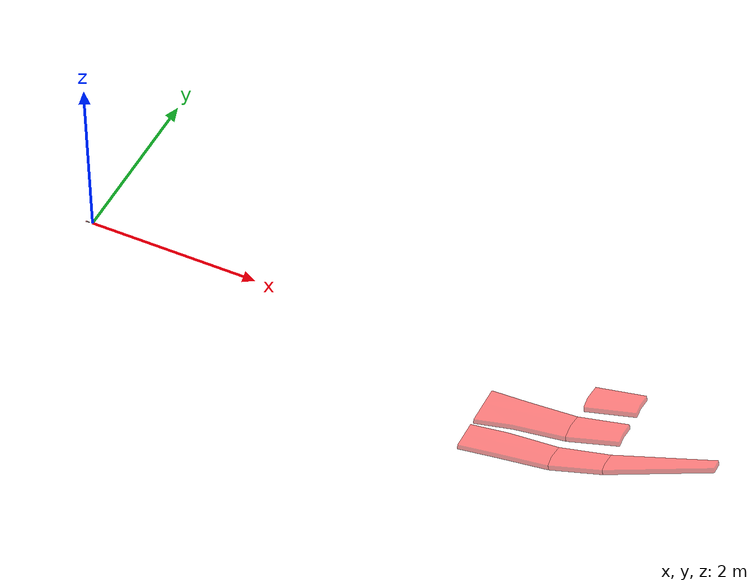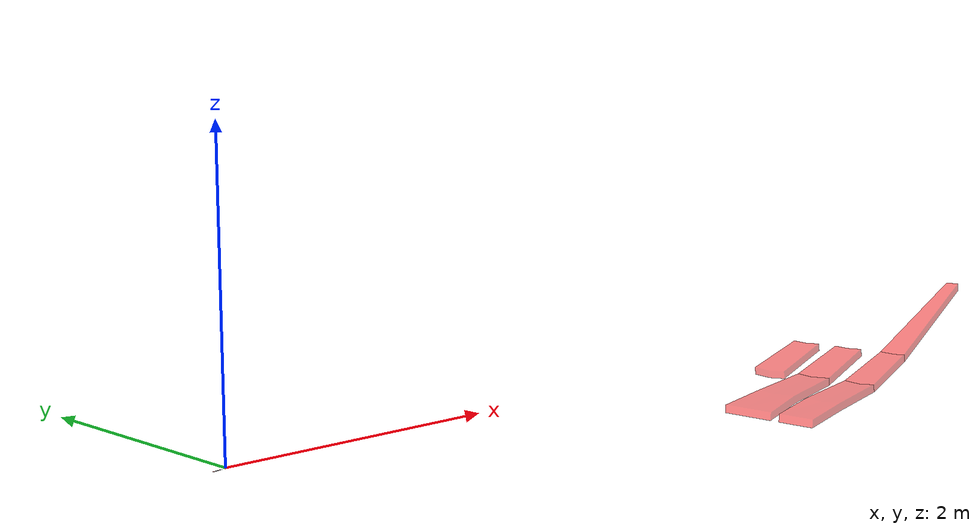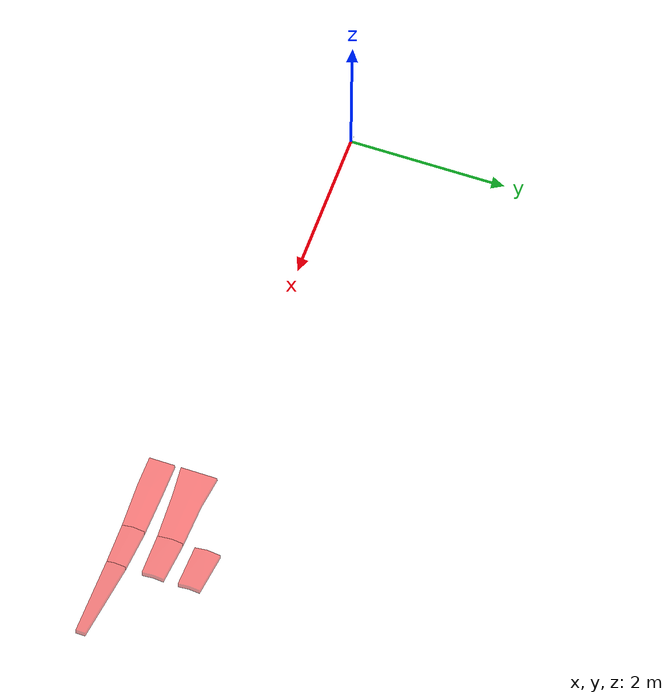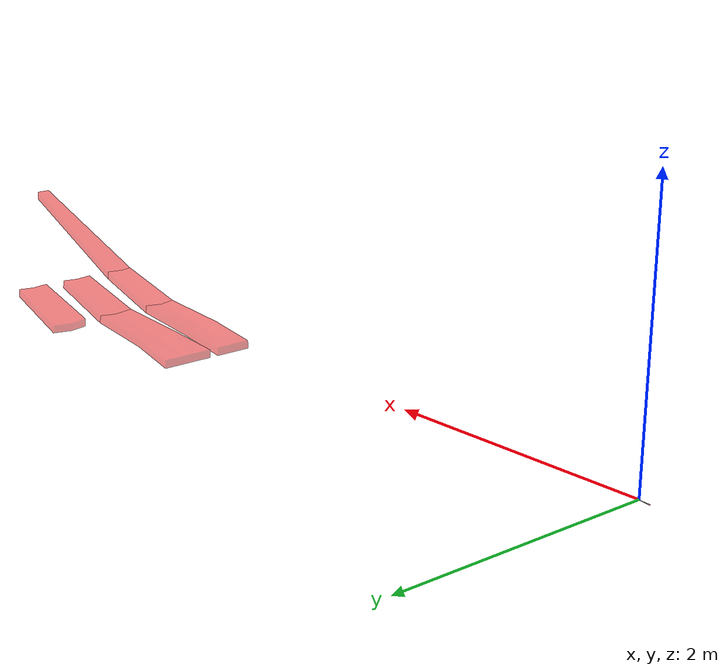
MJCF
<mujoco model="dessert_fork">
    <compiler angle="radian" meshdir="../meshes/" texturedir="../meshes/textures/"
        autolimits="true" />
    <asset>
        <mesh name="dessert_fork_visual" file="obj/DessertFork.obj" />
        <mesh name="dessert_fork_collision_01" file="stl/UCX_DessertFork_01.stl" />
        <mesh name="dessert_fork_collision_02" file="stl/UCX_DessertFork_02.stl" />
        <mesh name="dessert_fork_collision_03" file="stl/UCX_DessertFork_03.stl" />
        <mesh name="dessert_fork_collision_04" file="stl/UCX_DessertFork_04.stl" />
        <mesh name="dessert_fork_collision_05" file="stl/UCX_DessertFork_05.stl" />
        <mesh name="dessert_fork_collision_06" file="stl/UCX_DessertFork_06.stl" />
        <mesh name="dessert_fork_collision_07" file="stl/UCX_DessertFork_07.stl" />
        <mesh name="dessert_fork_collision_08" file="stl/UCX_DessertFork_08.stl" />
        <mesh name="dessert_fork_collision_09" file="stl/UCX_DessertFork_09.stl" />
        <mesh name="dessert_fork_collision_10" file="stl/UCX_DessertFork_10.stl" />
        <mesh name="dessert_fork_collision_11" file="stl/UCX_DessertFork_11.stl" />
        <mesh name="dessert_fork_collision_12" file="stl/UCX_DessertFork_12.stl" />
        <mesh name="dessert_fork_collision_13" file="stl/UCX_DessertFork_13.stl" />
        <mesh name="dessert_fork_collision_14" file="stl/UCX_DessertFork_14.stl" />
        <mesh name="dessert_fork_collision_15" file="stl/UCX_DessertFork_15.stl" />
        <mesh name="dessert_fork_collision_16" file="stl/UCX_DessertFork_16.stl" />
    </asset>
    <default>
		<default class="visual">
			<geom contype="0" conaffinity="0" />
		</default>
		<default class="collision">
			<geom rgba="1.0 0.0 0.0 0.5" />
		</default>
	</default>
    <worldbody>
        <body name="dessert_fork">
            <freejoint />
            <inertial pos="0.0 0.0 0.0" mass="0.01" diaginertia="0.0008 0.0008 0.00015" />
            <geom name="dessert_fork_visual" type="mesh" mesh="dessert_fork_visual" class="visual" />
            <geom name="dessert_fork_collision_01" type="mesh" mesh="dessert_fork_collision_01" class="collision" />
            <geom name="dessert_fork_collision_02" type="mesh" mesh="dessert_fork_collision_02" class="collision" />
            <geom name="dessert_fork_collision_03" type="mesh" mesh="dessert_fork_collision_03" class="collision" />
            <geom name="dessert_fork_collision_04" type="mesh" mesh="dessert_fork_collision_04" class="collision" />
            <geom name="dessert_fork_collision_05" type="mesh" mesh="dessert_fork_collision_05" class="collision" />
            <geom name="dessert_fork_collision_06" type="mesh" mesh="dessert_fork_collision_06" class="collision" />
            <geom name="dessert_fork_collision_07" type="mesh" mesh="dessert_fork_collision_07" class="collision" />
            <geom name="dessert_fork_collision_08" type="mesh" mesh="dessert_fork_collision_08" class="collision" />
            <geom name="dessert_fork_collision_09" type="mesh" mesh="dessert_fork_collision_09" class="collision" />
            <geom name="dessert_fork_collision_10" type="mesh" mesh="dessert_fork_collision_10" class="collision" />
            <geom name="dessert_fork_collision_11" type="mesh" mesh="dessert_fork_collision_11" class="collision" />
            <geom name="dessert_fork_collision_12" type="mesh" mesh="dessert_fork_collision_12" class="collision" />
            <geom name="dessert_fork_collision_13" type="mesh" mesh="dessert_fork_collision_13" class="collision" />
            <geom name="dessert_fork_collision_14" type="mesh" mesh="dessert_fork_collision_14" class="collision" />
            <geom name="dessert_fork_collision_15" type="mesh" mesh="dessert_fork_collision_15" class="collision" />
            <geom name="dessert_fork_collision_16" type="mesh" mesh="dessert_fork_collision_16" class="collision" />
        </body>
    </worldbody>
    <equality />
    <contact />
</mujoco>
